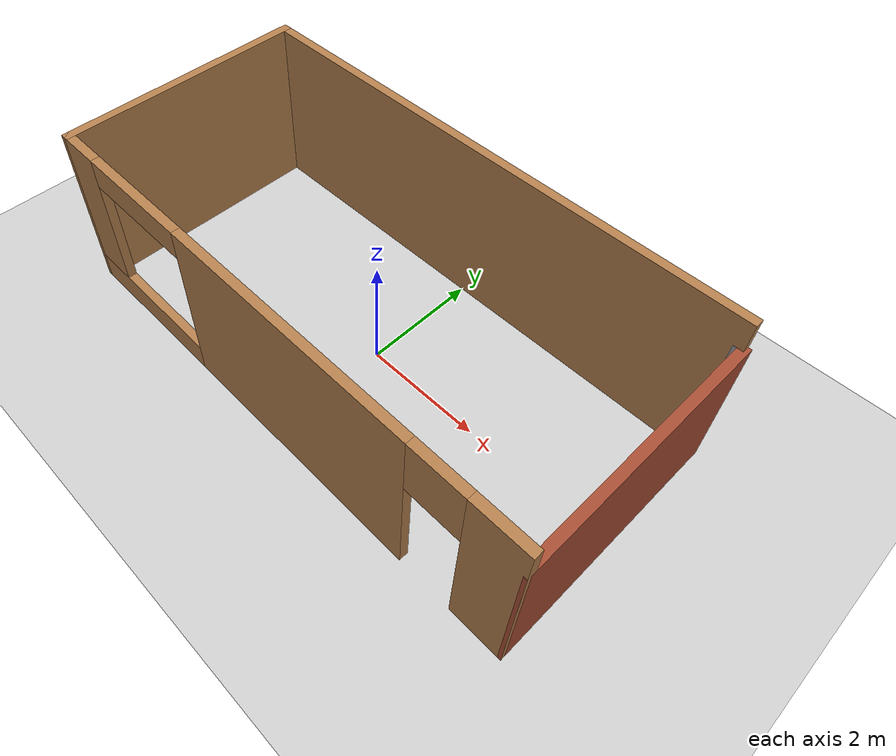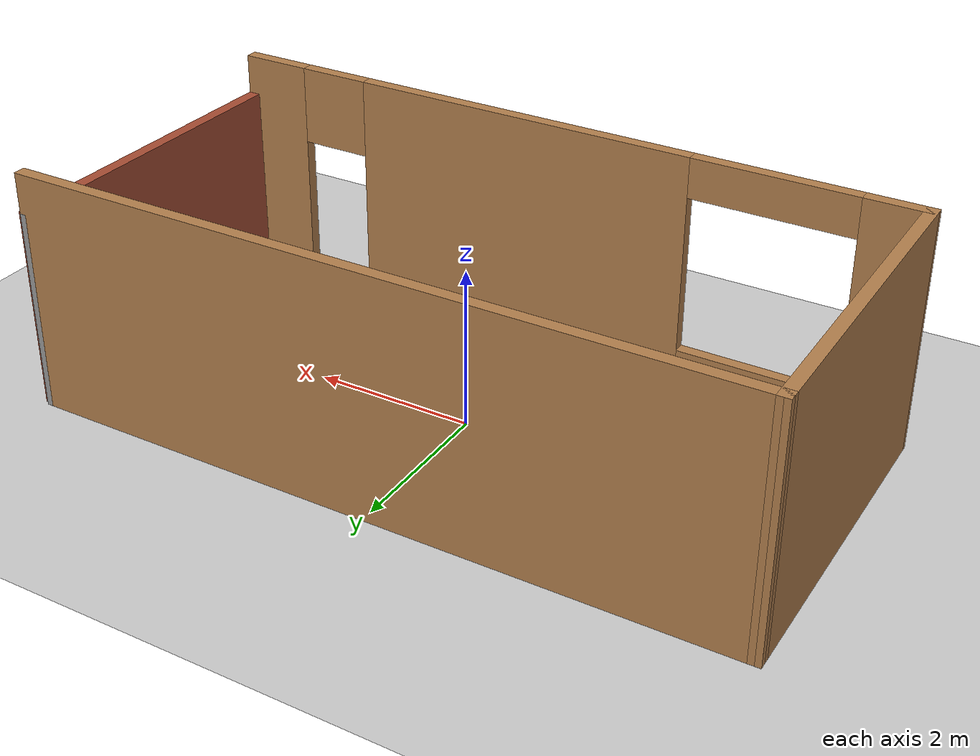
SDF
<sdf version="1.6">
 <world name="default">
  <light name="sun" type="directional">
   <pose>0 0 15 0 -0 0</pose>
   <diffuse>1 1 1 1</diffuse>
   <specular>0.1 0.1 0.1 1</specular>
   <attenuation>
    <range>1000</range>
    <constant>0.9</constant>
    <linear>0.01</linear>
    <quadratic>0.001</quadratic>
   </attenuation>
   <direction>-0.5 0.5 -1</direction>
  </light>
  <model name="ground_plane">
   <static>1</static>
   <link name="link">
    <collision name="collision">
     <geometry><plane><normal>0 0 1</normal><size>100 100</size></plane></geometry>
     <surface><friction><ode><mu>100</mu><mu2>50</mu2></ode></friction></surface>
    </collision>
    <visual name="visual">
     <cast_shadows>0</cast_shadows>
     <geometry><plane><normal>0 0 1</normal><size>100 100</size></plane></geometry>
     <material>
      <script><uri>file://media/materials/scripts/gazebo.material</uri><name>Gazebo/Grey</name></script>
     </material>
    </visual>
   </link>
  </model>
  <gravity>0 0 -9.8</gravity>
  <magnetic_field>6e-06 2.3e-05 -4.2e-05</magnetic_field>
  <atmosphere type="adiabatic"/>
  <physics name="default_physics" default="0" type="ode">
   <max_step_size>0.001</max_step_size>
   <real_time_factor>1</real_time_factor>
   <real_time_update_rate>1000</real_time_update_rate>
  </physics>
  <scene><ambient>0.4 0.4 0.4 1</ambient><background>0.7 0.7 0.7 1</background><shadows>1</shadows></scene>
  <spherical_coordinates>
   <surface_model>EARTH_WGS84</surface_model>
   <latitude_deg>0</latitude_deg>
   <longitude_deg>0</longitude_deg>
   <elevation>0</elevation>
   <heading_deg>0</heading_deg>
  </spherical_coordinates>
  <model name="my_Cafe3">
   <link name="Wall_1">
    <collision name="Wall_1_Collision">
     <geometry><box><size>4.30016 0.15 2.5</size></box></geometry>
     <pose>0 0 1.25 0 -0 0</pose>
    </collision>
    <visual name="Wall_1_Visual">
     <pose>0 0 1.25 0 -0 0</pose>
     <geometry><box><size>4.30016 0.15 2.5</size></box></geometry>
     <material>
      <script><uri>file://media/materials/scripts/gazebo.material</uri><name>Gazebo/Bricks</name></script>
      <ambient>1 1 1 1</ambient>
     </material>
    </visual>
    <pose>4.42603 -0.024587 0 0 0 -1.58453</pose>
   </link>
   <link name="Wall_2">
    <pose>-0.02747 -2.07459 0 0 -0 3.13594</pose>
    <visual name="Wall_2_Visual_0">
     <pose>-4.05588 0 1.5 0 -0 0</pose>
     <geometry><box><size>0.888248 0.15 3</size></box></geometry>
     <material>
      <script><uri>file://media/materials/scripts/gazebo.material</uri><name>Gazebo/Wood</name></script>
      <ambient>1 1 1 1</ambient>
     </material>
    </visual>
    <collision name="Wall_2_Collision_0">
     <geometry><box><size>0.888248 0.15 3</size></box></geometry>
     <pose>-4.05588 0 1.5 0 -0 0</pose>
    </collision>
    <visual name="Wall_2_Visual_1">
     <pose>-0.509101 0 1.5 0 -0 0</pose>
     <geometry><box><size>4.4053 0.15 3</size></box></geometry>
     <material>
      <script><uri>file://media/materials/scripts/gazebo.material</uri><name>Gazebo/Wood</name></script>
      <ambient>1 1 1 1</ambient>
     </material>
    </visual>
    <collision name="Wall_2_Collision_1">
     <geometry><box><size>4.4053 0.15 3</size></box></geometry>
     <pose>-0.509101 0 1.5 0 -0 0</pose>
    </collision>
    <visual name="Wall_2_Visual_2">
     <pose>3.09678 0 0.25 0 -0 0</pose>
     <geometry><box><size>2.80645 0.15 0.5</size></box></geometry>
     <material>
      <script><uri>file://media/materials/scripts/gazebo.material</uri><name>Gazebo/Wood</name></script>
      <ambient>1 1 1 1</ambient>
     </material>
    </visual>
    <collision name="Wall_2_Collision_2">
     <geometry><box><size>2.80645 0.15 0.5</size></box></geometry>
     <pose>3.09678 0 0.25 0 -0 0</pose>
    </collision>
    <visual name="Wall_2_Visual_3">
     <pose>4.09678 0 1.75 0 -0 0</pose>
     <geometry><box><size>0.80645 0.15 2.5</size></box></geometry>
     <material>
      <script><uri>file://media/materials/scripts/gazebo.material</uri><name>Gazebo/Wood</name></script>
      <ambient>1 1 1 1</ambient>
     </material>
    </visual>
    <collision name="Wall_2_Collision_3">
     <geometry><box><size>0.80645 0.15 2.5</size></box></geometry>
     <pose>4.09678 0 1.75 0 -0 0</pose>
    </collision>
    <visual name="Wall_2_Visual_4">
     <pose>-3.16175 0 2.5 0 -0 0</pose>
     <geometry><box><size>0.9 0.15 1</size></box></geometry>
     <material>
      <script><uri>file://media/materials/scripts/gazebo.material</uri><name>Gazebo/Wood</name></script>
      <ambient>1 1 1 1</ambient>
     </material>
    </visual>
    <collision name="Wall_2_Collision_4">
     <geometry><box><size>0.9 0.15 1</size></box></geometry>
     <pose>-3.16175 0 2.5 0 -0 0</pose>
    </collision>
    <visual name="Wall_2_Visual_5">
     <pose>2.69355 0 2.75 0 -0 0</pose>
     <geometry><box><size>2 0.15 0.5</size></box></geometry>
     <material>
      <script><uri>file://media/materials/scripts/gazebo.material</uri><name>Gazebo/Wood</name></script>
      <ambient>1 1 1 1</ambient>
     </material>
    </visual>
    <collision name="Wall_2_Collision_5">
     <geometry><box><size>2 0.15 0.5</size></box></geometry>
     <pose>2.69355 0 2.75 0 -0 0</pose>
    </collision>
   </link>
   <link name="Wall_3">
    <collision name="Wall_3_Collision">
     <geometry><box><size>4.3 0.15 3</size></box></geometry>
     <pose>0 0 1.5 0 -0 0</pose>
    </collision>
    <visual name="Wall_3_Visual">
     <pose>0 0 1.5 0 -0 0</pose>
     <geometry><box><size>4.3 0.15 3</size></box></geometry>
     <material>
      <script><uri>file://media/materials/scripts/gazebo.material</uri><name>Gazebo/Wood</name></script>
      <ambient>1 1 1 1</ambient>
     </material>
    </visual>
    <pose>-4.45397 0.025412 0 0 -0 1.57152</pose>
   </link>
   <link name="Wall_4">
    <collision name="Wall_4_Collision">
     <geometry><box><size>9 0.15 3</size></box></geometry>
     <pose>0 0 1.5 0 -0 0</pose>
    </collision>
    <visual name="Wall_4_Visual">
     <pose>0 0 1.5 0 -0 0</pose>
     <geometry><box><size>9 0.15 3</size></box></geometry>
     <material>
      <script><uri>file://media/materials/scripts/gazebo.material</uri><name>Gazebo/Wood</name></script>
      <ambient>1 1 1 1</ambient>
     </material>
    </visual>
    <pose>-0.030469 2.09541 0 0 0 -0.00113</pose>
   </link>
   <link name="Wall_5">
    <collision name="Wall_5_Collision">
     <geometry><box><size>0.15 0.15 2.5</size></box></geometry>
     <pose>0 0 1.25 0 -0 0</pose>
    </collision>
    <visual name="Wall_5_Visual">
     <pose>0 0 1.25 0 -0 0</pose>
     <geometry><box><size>0.15 0.15 2.5</size></box></geometry>
     <material>
      <script><uri>file://media/materials/scripts/gazebo.material</uri><name>Gazebo/Grey</name></script>
      <ambient>1 1 1 1</ambient>
     </material>
    </visual>
    <pose>4.39453 2.09041 0 0 -0 0</pose>
   </link>
   <static>1</static>
  </model>
 </world>
</sdf>
